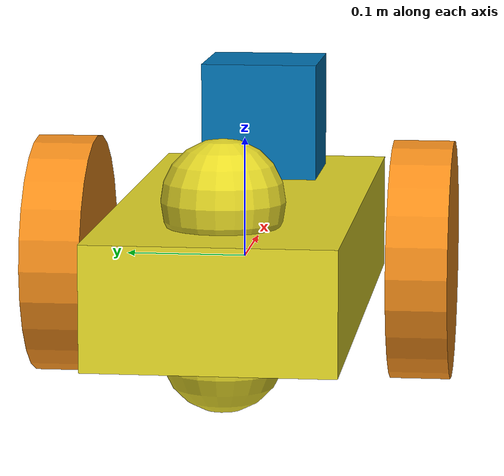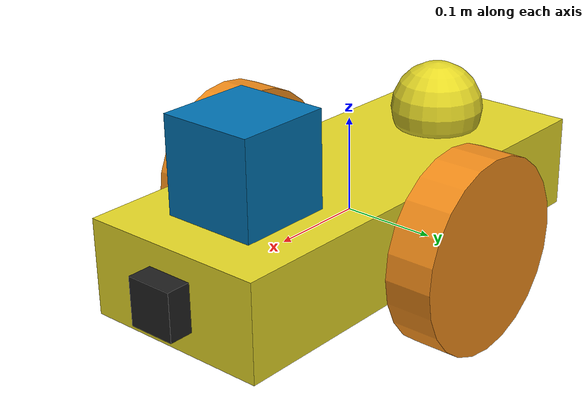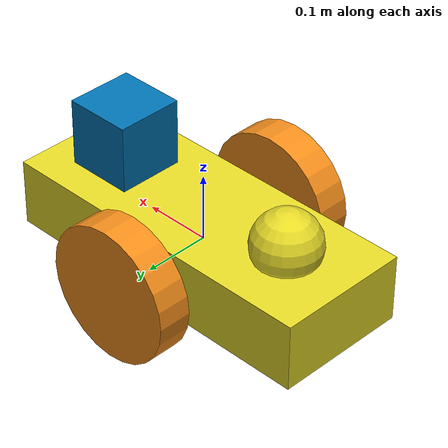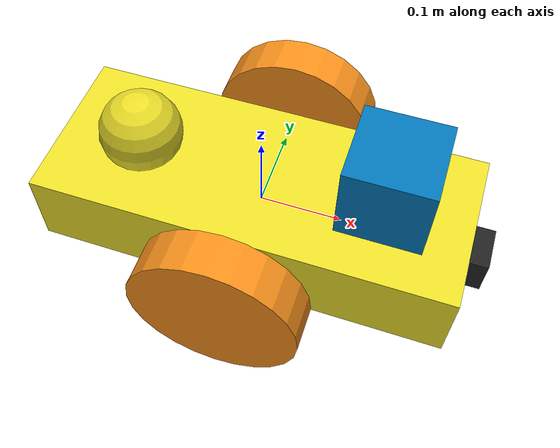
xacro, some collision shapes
<?xml version='1.0'?>

<robot name="my_robot" xmlns:xacro="http://www.ros.org/wiki/xacro">
 <xacro:include filename="$(find my_robot)/urdf/my_robot.gazebo" />

  <link name="robot_footprint"></link>

  <joint name="robot_footprint_joint" type="fixed">
    <origin xyz="0 0 0" rpy="0 0 0" />
    <parent link="robot_footprint"/>
    <child link="chassis" />
  </joint>
<!--my own sentences are here -->

<link name="left_wheel">

<inertial>
	<origin xyz="0 0 0" rpy="0 1.5707 1.5707"/>
        <mass value ="5"/>
	<inertia
	  ixx="0.1" ixy="0" ixz="0"
          iyy="0.1" iyz="0"
          izz="0.1"
	/>
</inertial>

<visual>
	<origin xyz="0 0 0" rpy="0 1.5707 1.5707"/>
	<geometry>
	<cylinder radius="0.1" length="0.05"/>
	</geometry>

</visual>

<collision>
	<origin xyz="0 0 0" rpy="0 1.5707 1.5707"/>
	<geometry>
	<cylinder radius="0.1" length="0.05"/>
	</geometry>
</collision>

</link>

<joint type="continuous" name="left_wheel_hinge">
<origin xyz="0 0.15 0" rpy="0 0 0"/>
<child link="left_wheel"/>
<parent link="chassis"/>
<axis xyz="0 1 0" rpy="0 0 0"/>
<limit effort="10000" velocity="1000"/>
<dynamics damping="1.0" friction="1.0"/>
</joint>

<link name="right_wheel">

<inertial>
	<origin xyz="0 0 0" rpy="0 1.5707 1.5707"/>
        <mass value ="5"/>
	<inertia
	  ixx="0.1" ixy="0" ixz="0"
          iyy="0.1" iyz="0"
          izz="0.1"
	/>
</inertial>

<visual>
	<origin xyz="0 0 0" rpy="0 1.5707 1.5707"/>
	<geometry>
	<cylinder radius="0.1" length="0.05"/>
	</geometry>
</visual>

<collision>
	<origin xyz="0 0 0" rpy="0 1.5707 1.5707"/>
	<geometry>
	<cylinder radius="0.1" length="0.05"/>
	</geometry>
</collision>

</link>

<joint type="continuous" name="right_wheel_hinge">
<origin xyz="0 -0.15 0" rpy="0 0 0"/>
<child link="right_wheel"/>
<parent link="chassis"/>
<axis xyz="0 1 0" rpy="0 0 0"/>
<limit effort="10000" velocity="1000"/>
<dynamics damping="1.0" friction="1.0"/>
</joint>

<!--code for camera starts here-->
<link name="camera">

<inertial>
	<origin xyz="0.05 0.05 0.05" rpy="0 0 0"/>
        <mass value ="0.1"/>
	<inertia
	  ixx="1e-6" ixy="0" ixz="0"
          iyy="1e-6" iyz="0"
          izz="1e-6"
	/>
</inertial>

<visual>
	<origin xyz="0 0 0" rpy="0 0 0"/>
	<geometry>
	<box size="0.05 0.05 0.05"/>
	</geometry>
</visual>

<collision>
	<origin xyz="0 0 0" rpy="0 0 0"/>
	<geometry>
	<box size="0.05 0.05 0.05"/>
	</geometry>
</collision>

</link>

<joint type="fixed" name="camera_joint">
<origin xyz="0.25 0 0" rpy="0 0 0"/>
<child link="camera"/>
<parent link="chassis"/>
<axis xyz="0 1 0" rpy="0 0 0"/>
</joint>
<!--code for camera stops here-->

<!--code for lidar hokuyo-->

<link name="hokuyo">

<inertial>
	<origin xyz="0 0 0" rpy="0 0 0"/>
        <mass value ="1e-5"/>
	<inertia
	  ixx="1e-6" ixy="0" ixz="0"
          iyy="1e-6" iyz="0"
          izz="1e-6"
	/>
</inertial>

<visual>
	<origin xyz="0 0 0" rpy="0 0 0"/>
	<geometry>
	<mesh filename = "package://my_robot/meshes/hokuyo.dae"/>
	</geometry>
</visual>

<collision>
	<origin xyz="0 0 0" rpy="0 0 0"/>
	<geometry>
	<box size="0.1 0.1 0.1"/>
	</geometry>
</collision>

</link>

<joint type="fixed" name="hokuyo_joint">
<origin xyz="0.15 0 0.1" rpy="0 0 0"/>
<child link="hokuyo"/>
<parent link="chassis"/>
<axis xyz="0 1 0" rpy="0 0 0"/>
</joint>

<!--code for lidar hokuyo stops here -->
<gazebo reference="left_wheel">
    <material>Gazebo/Orange</material>
</gazebo>

<gazebo reference="right_wheel">
    <material>Gazebo/Orange</material>
</gazebo>

<gazebo reference="camera">
    <material>Gazebo/Black</material>
</gazebo>
<gazebo reference="chassis">
    <material>Gazebo/Yellow</material>
</gazebo>

<!-- Code for the camera optical joint -->

<link name="camera_link_optical">
  </link>
<joint name="camera_optical_joint" type="fixed">
    <origin xyz="0 0 0" rpy="-1.5707 0 -1.5707"/>
    <parent link="camera"/>
    <child link="camera_link_optical"/>
  </joint>

<!--mysentences end here -->
  <link name='chassis'>
    <pose>0 0 0.1 0 0 0</pose>

    <inertial>
      <mass value="15.0"/>
      <origin xyz="0.0 0 0" rpy=" 0 0 0"/>
      <inertia
          ixx="0.1" ixy="0" ixz="0"
          iyy="0.1" iyz="0"
          izz="0.1"
      />
    </inertial>

    <collision name='collision'>
      <origin xyz="0 0 0" rpy=" 0 0 0"/>
      <geometry>
        <box size=".5 .2 .1"/>
      </geometry>
    </collision>

    <visual name='chassis_visual'>
      <origin xyz="0 0 0" rpy=" 0 0 0"/>
      <geometry>
        <box size=".5 .2 .1"/>
      </geometry>
    </visual>

    <collision name='back_caster_collision'>
      <origin xyz="-0.15 0 -0.05" rpy=" 0 0 0"/>
      <geometry>
        <sphere radius="0.0499"/>
      </geometry>
    </collision>

    <visual name='back_caster_visual'>
      <origin xyz="-0.15 0 -0.05" rpy=" 0 0 0"/>
      <geometry>
        <sphere radius="0.05"/>
      </geometry>
    </visual>

    <collision name='front_caster_collision'>
      <origin xyz="0.15 0 -0.05" rpy=" 0 0 0"/>
      <geometry>
        <sphere radius="0.0499"/>
      </geometry>
    </collision>

    <visual name='front_caster_visual'>
      <origin xyz="0.15 0 -0.05" rpy=" 0 0 0"/>
      <geometry>
        <sphere radius="0.05"/>
      </geometry>
    </visual>
 <!--some basic modification-->
    <collision name='top_caster_collision'>
      <origin xyz="-0.15 0 0.07" rpy=" 0 0 0"/>
      <geometry>
        <sphere radius="0.0499"/>
      </geometry>
    </collision>

    <visual name='top_caster_visual'>
      <origin xyz="-0.15 0 0.07" rpy=" 0 0 0"/>
      <geometry>
        <sphere radius="0.05"/>
      </geometry>
    </visual>
<!--some basic modification end here-->
  </link>

</robot>
